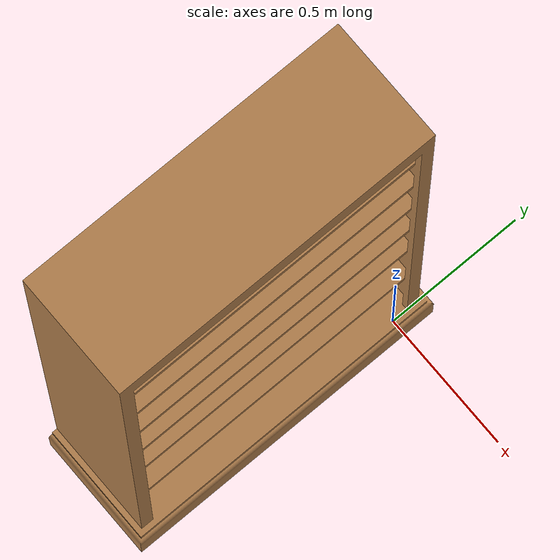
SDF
<?xml version="1.0"?>
<sdf version="1.6">
   <model name="2_estante">
   	<static>1</static>
       <pose>0 0 0.0 0 0 1.57</pose>
       <link name="link_00">
       <pose>-1.0 0 0 0 0 0</pose>
       <visual name="visual_00">
           <geometry>
               <mesh>
                <uri>model://2_estante/2_estante.obj</uri>
                <scale>0.03 0.03 0.03</scale>
               </mesh>
           </geometry>
           <material>
          <script>
            <uri>file://media/materials/scripts/gazebo.material</uri>
            <name>Gazebo/Wood</name>
          </script>
        </material>
       </visual>
       <collision name="collision">
           <geometry>
               <mesh>
               <uri>model://2_estante/2_estante.obj</uri>
               <scale>0.03 0.03 0.03</scale>
               </mesh>
           </geometry>
       </collision>

       </link>
   </model>
</sdf>
